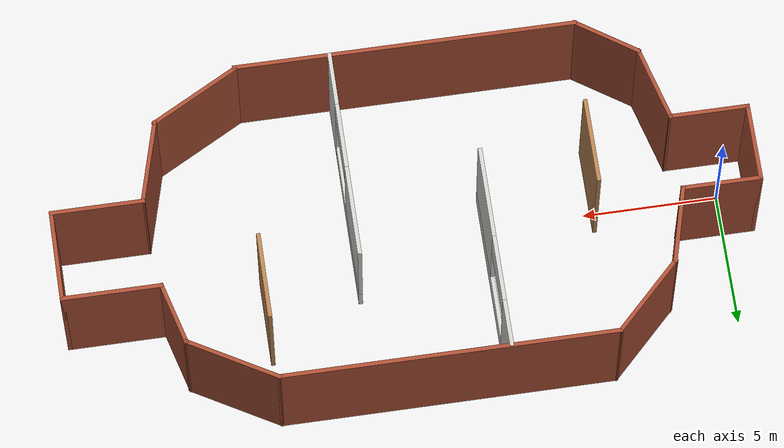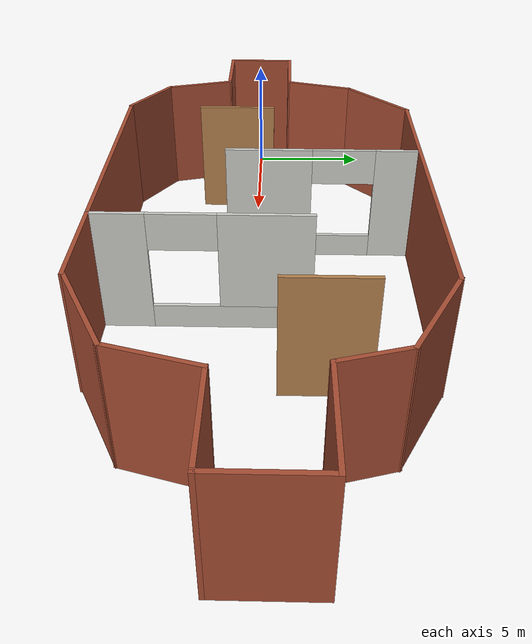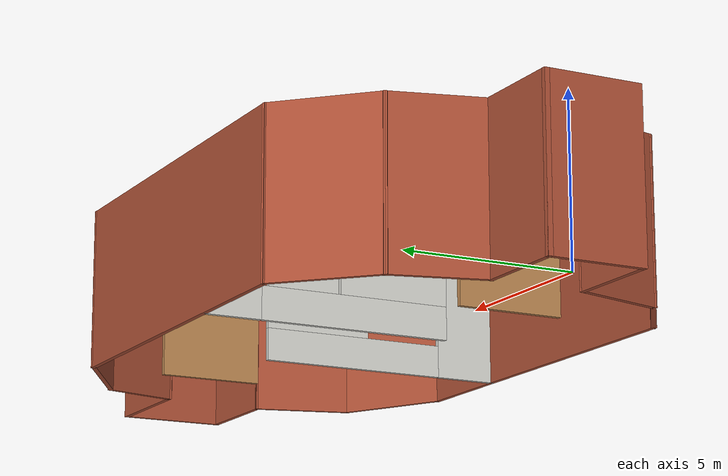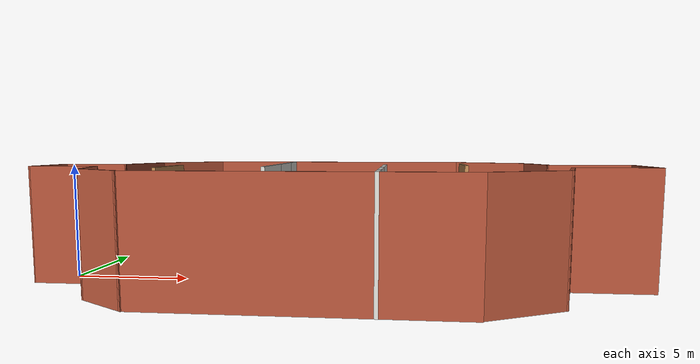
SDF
<?xml version='1.0'?>
<sdf version='1.5'>
  <model name='course_1'>
    <pose>11.674 0.448669 0 0 -0 0</pose>
    <link name='Wall_38'>
      <collision name='Wall_38_Collision'>
        <geometry>
          <box>
            <size>3 0.15 5</size>
          </box>
        </geometry>
        <pose>0 0 2.5 0 -0 0</pose>
      </collision>
      <visual name='Wall_38_Visual'>
        <pose>0 0 2.5 0 -0 0</pose>
        <geometry>
          <box>
            <size>3 0.15 5</size>
          </box>
        </geometry>
        <material>
          <script>
            <uri>file://media/materials/scripts/gazebo.material</uri>
            <name>Gazebo/Bricks</name>
          </script>
          <ambient>1 1 1 1</ambient>
        </material>
        <meta>
          <layer>0</layer>
        </meta>
      </visual>
      <pose>-12.816 -0.460669 0 0 -0 -1.5708</pose>
    </link>
    <link name='Wall_40'>
      <collision name='Wall_40_Collision'>
        <geometry>
          <box>
            <size>3 0.15 5</size>
          </box>
        </geometry>
        <pose>0 0 2.5 0 -0 0</pose>
      </collision>
      <visual name='Wall_40_Visual'>
        <pose>0 0 2.5 0 -0 0</pose>
        <geometry>
          <box>
            <size>3 0.15 5</size>
          </box>
        </geometry>
        <material>
          <script>
            <uri>file://media/materials/scripts/gazebo.material</uri>
            <name>Gazebo/Bricks</name>
          </script>
          <ambient>1 1 1 1</ambient>
        </material>
        <meta>
          <layer>0</layer>
        </meta>
      </visual>
      <pose>-11.391 0.964331 0 0 -0 0</pose>
    </link>
    <link name='Wall_42'>
      <collision name='Wall_42_Collision'>
        <geometry>
          <box>
            <size>3 0.15 5</size>
          </box>
        </geometry>
        <pose>0 0 2.5 0 -0 0</pose>
      </collision>
      <visual name='Wall_42_Visual'>
        <pose>0 0 2.5 0 -0 0</pose>
        <geometry>
          <box>
            <size>3 0.15 5</size>
          </box>
        </geometry>
        <material>
          <script>
            <uri>file://media/materials/scripts/gazebo.material</uri>
            <name>Gazebo/Bricks</name>
          </script>
          <ambient>1 1 1 1</ambient>
        </material>
        <meta>
          <layer>0</layer>
        </meta>
      </visual>
      <pose>-11.391 -1.88567 0 0 -0 0</pose>
    </link>
    <link name='Wall_44'>
      <collision name='Wall_44_Collision'>
        <geometry>
          <box>
            <size>3.00018 0.15 5</size>
          </box>
        </geometry>
        <pose>0 0 2.5 0 -0 0</pose>
      </collision>
      <visual name='Wall_44_Visual'>
        <pose>0 0 2.5 0 -0 0</pose>
        <geometry>
          <box>
            <size>3.00018 0.15 5</size>
          </box>
        </geometry>
        <material>
          <script>
            <uri>file://media/materials/scripts/gazebo.material</uri>
            <name>Gazebo/Bricks</name>
          </script>
          <ambient>1 1 1 1</ambient>
        </material>
        <meta>
          <layer>0</layer>
        </meta>
      </visual>
      <pose>-9.5974 2.34093 0 0 -0 1.30917</pose>
    </link>
    <link name='Wall_45'>
      <collision name='Wall_45_Collision'>
        <geometry>
          <box>
            <size>3.5 0.15 5</size>
          </box>
        </geometry>
        <pose>0 0 2.5 0 -0 0</pose>
      </collision>
      <visual name='Wall_45_Visual'>
        <pose>0 0 2.5 0 -0 0</pose>
        <geometry>
          <box>
            <size>3.5 0.15 5</size>
          </box>
        </geometry>
        <material>
          <script>
            <uri>file://media/materials/scripts/gazebo.material</uri>
            <name>Gazebo/Bricks</name>
          </script>
          <ambient>1 1 1 1</ambient>
        </material>
        <meta>
          <layer>0</layer>
        </meta>
      </visual>
      <pose>-8.0444 4.90193 0 0 -0 0.785398</pose>
    </link>
    <link name='Wall_46'>
      <collision name='Wall_46_Collision'>
        <geometry>
          <box>
            <size>12.5 0.15 5</size>
          </box>
        </geometry>
        <pose>0 0 2.5 0 -0 0</pose>
      </collision>
      <visual name='Wall_46_Visual'>
        <pose>0 0 2.5 0 -0 0</pose>
        <geometry>
          <box>
            <size>12.5 0.15 5</size>
          </box>
        </geometry>
        <material>
          <script>
            <uri>file://media/materials/scripts/gazebo.material</uri>
            <name>Gazebo/Bricks</name>
          </script>
          <ambient>1 1 1 1</ambient>
        </material>
        <meta>
          <layer>0</layer>
        </meta>
      </visual>
      <pose>-0.685 6.08633 0 0 -0 0</pose>
    </link>
    <link name='Wall_47'>
      <collision name='Wall_47_Collision'>
        <geometry>
          <box>
            <size>3.75027 0.15 5</size>
          </box>
        </geometry>
        <pose>0 0 2.5 0 -0 0</pose>
      </collision>
      <visual name='Wall_47_Visual'>
        <pose>0 0 2.5 0 -0 0</pose>
        <geometry>
          <box>
            <size>3.75027 0.15 5</size>
          </box>
        </geometry>
        <material>
          <script>
            <uri>file://media/materials/scripts/gazebo.material</uri>
            <name>Gazebo/Bricks</name>
          </script>
          <ambient>1 1 1 1</ambient>
        </material>
        <meta>
          <layer>0</layer>
        </meta>
      </visual>
      <pose>7.049 5.18633 0 0 -0 -0.523556</pose>
    </link>
    <link name='Wall_48'>
      <collision name='Wall_48_Collision'>
        <geometry>
          <box>
            <size>2.5 0.15 5</size>
          </box>
        </geometry>
        <pose>0 0 2.5 0 -0 0</pose>
      </collision>
      <visual name='Wall_48_Visual'>
        <pose>0 0 2.5 0 -0 0</pose>
        <geometry>
          <box>
            <size>2.5 0.15 5</size>
          </box>
        </geometry>
        <material>
          <script>
            <uri>file://media/materials/scripts/gazebo.material</uri>
            <name>Gazebo/Bricks</name>
          </script>
          <ambient>1 1 1 1</ambient>
        </material>
        <meta>
          <layer>0</layer>
        </meta>
      </visual>
      <pose>8.912 3.15133 0 0 -0 -1.3091</pose>
    </link>
    <link name='Wall_49'>
      <collision name='Wall_49_Collision'>
        <geometry>
          <box>
            <size>3.75 0.15 5</size>
          </box>
        </geometry>
        <pose>0 0 2.5 0 -0 0</pose>
      </collision>
      <visual name='Wall_49_Visual'>
        <pose>0 0 2.5 0 -0 0</pose>
        <geometry>
          <box>
            <size>3.75 0.15 5</size>
          </box>
        </geometry>
        <material>
          <script>
            <uri>file://media/materials/scripts/gazebo.material</uri>
            <name>Gazebo/Bricks</name>
          </script>
          <ambient>1 1 1 1</ambient>
        </material>
        <meta>
          <layer>0</layer>
        </meta>
      </visual>
      <pose>11.016 2.01633 0 0 -0 0</pose>
    </link>
    <link name='Wall_50'>
      <collision name='Wall_50_Collision'>
        <geometry>
          <box>
            <size>3.5 0.15 5</size>
          </box>
        </geometry>
        <pose>0 0 2.5 0 -0 0</pose>
      </collision>
      <visual name='Wall_50_Visual'>
        <pose>0 0 2.5 0 -0 0</pose>
        <geometry>
          <box>
            <size>3.5 0.15 5</size>
          </box>
        </geometry>
        <material>
          <script>
            <uri>file://media/materials/scripts/gazebo.material</uri>
            <name>Gazebo/Bricks</name>
          </script>
          <ambient>1 1 1 1</ambient>
        </material>
        <meta>
          <layer>0</layer>
        </meta>
      </visual>
      <pose>12.816 0.341331 0 0 -0 -1.5708</pose>
    </link>
    <link name='Wall_51'>
      <collision name='Wall_51_Collision'>
        <geometry>
          <box>
            <size>3.5 0.15 5</size>
          </box>
        </geometry>
        <pose>0 0 2.5 0 -0 0</pose>
      </collision>
      <visual name='Wall_51_Visual'>
        <pose>0 0 2.5 0 -0 0</pose>
        <geometry>
          <box>
            <size>3.5 0.15 5</size>
          </box>
        </geometry>
        <material>
          <script>
            <uri>file://media/materials/scripts/gazebo.material</uri>
            <name>Gazebo/Bricks</name>
          </script>
          <ambient>1 1 1 1</ambient>
        </material>
        <meta>
          <layer>0</layer>
        </meta>
      </visual>
      <pose>11.141 -1.33367 0 0 -0 3.14159</pose>
    </link>
    <link name='Wall_52'>
      <collision name='Wall_52_Collision'>
        <geometry>
          <box>
            <size>3.25 0.15 5</size>
          </box>
        </geometry>
        <pose>0 0 2.5 0 -0 0</pose>
      </collision>
      <visual name='Wall_52_Visual'>
        <pose>0 0 2.5 0 -0 0</pose>
        <geometry>
          <box>
            <size>3.25 0.15 5</size>
          </box>
        </geometry>
        <material>
          <script>
            <uri>file://media/materials/scripts/gazebo.material</uri>
            <name>Gazebo/Bricks</name>
          </script>
          <ambient>1 1 1 1</ambient>
        </material>
        <meta>
          <layer>0</layer>
        </meta>
      </visual>
      <pose>9.065 -2.83117 0 0 -0 -1.83244</pose>
    </link>
    <link name='Wall_53'>
      <collision name='Wall_53_Collision'>
        <geometry>
          <box>
            <size>3.74599 0.15 5</size>
          </box>
        </geometry>
        <pose>0 0 2.5 0 -0 0</pose>
      </collision>
      <visual name='Wall_53_Visual'>
        <pose>0 0 2.5 0 -0 0</pose>
        <geometry>
          <box>
            <size>3.74599 0.15 5</size>
          </box>
        </geometry>
        <material>
          <script>
            <uri>file://media/materials/scripts/gazebo.material</uri>
            <name>Gazebo/Bricks</name>
          </script>
          <ambient>1 1 1 1</ambient>
        </material>
        <meta>
          <layer>0</layer>
        </meta>
      </visual>
      <pose>7.08477 -5.18821 0 0 -0 -2.64315</pose>
    </link>
    <link name='Wall_54'>
      <collision name='Wall_54_Collision'>
        <geometry>
          <box>
            <size>12.75 0.15 5</size>
          </box>
        </geometry>
        <pose>0 0 2.5 0 -0 0</pose>
      </collision>
      <visual name='Wall_54_Visual'>
        <pose>0 0 2.5 0 -0 0</pose>
        <geometry>
          <box>
            <size>12.75 0.15 5</size>
          </box>
        </geometry>
        <material>
          <script>
            <uri>file://media/materials/scripts/gazebo.material</uri>
            <name>Gazebo/Bricks</name>
          </script>
          <ambient>1 1 1 1</ambient>
        </material>
        <meta>
          <layer>0</layer>
        </meta>
      </visual>
      <pose>-0.794456 -6.08821 0 0 -0 3.14159</pose>
    </link>
    <link name='Wall_55'>
      <collision name='Wall_55_Collision'>
        <geometry>
          <box>
            <size>2.72974 0.15 5</size>
          </box>
        </geometry>
        <pose>0 0 2.5 0 -0 0</pose>
      </collision>
      <visual name='Wall_55_Visual'>
        <pose>0 0 2.5 0 -0 0</pose>
        <geometry>
          <box>
            <size>2.72974 0.15 5</size>
          </box>
        </geometry>
        <material>
          <script>
            <uri>file://media/materials/scripts/gazebo.material</uri>
            <name>Gazebo/Bricks</name>
          </script>
          <ambient>1 1 1 1</ambient>
        </material>
        <meta>
          <layer>0</layer>
        </meta>
      </visual>
      <pose>-8.16141 -5.36339 0 0 -0 2.54487</pose>
    </link>
    <link name='Wall_56'>
      <collision name='Wall_56_Collision'>
        <geometry>
          <box>
            <size>3 0.15 5</size>
          </box>
        </geometry>
        <pose>0 0 2.5 0 -0 0</pose>
      </collision>
      <visual name='Wall_56_Visual'>
        <pose>0 0 2.5 0 -0 0</pose>
        <geometry>
          <box>
            <size>3 0.15 5</size>
          </box>
        </geometry>
        <material>
          <script>
            <uri>file://media/materials/scripts/gazebo.material</uri>
            <name>Gazebo/Bricks</name>
          </script>
          <ambient>1 1 1 1</ambient>
        </material>
        <meta>
          <layer>0</layer>
        </meta>
      </visual>
      <pose>-9.59718 -3.26211 0 0 -0 1.8326</pose>
    </link>
    <link name='Wall_58'>
      <pose>-2.907 2.24533 0 0 -0 -1.5708</pose>
      <visual name='Wall_58_Visual_0'>
        <pose>-2.98587 0 2.5 0 -0 0</pose>
        <geometry>
          <box>
            <size>1.77826 0.15 5</size>
          </box>
        </geometry>
        <material>
          <script>
            <uri>file://media/materials/scripts/gazebo.material</uri>
            <name>Gazebo/CeilingTiled</name>
          </script>
          <ambient>1 1 1 1</ambient>
        </material>
        <meta>
          <layer>0</layer>
        </meta>
      </visual>
      <collision name='Wall_58_Collision_0'>
        <geometry>
          <box>
            <size>1.77826 0.15 5</size>
          </box>
        </geometry>
        <pose>-2.98587 0 2.5 0 -0 0</pose>
      </collision>
      <visual name='Wall_58_Visual_1'>
        <pose>0.889129 0 0.5 0 -0 0</pose>
        <geometry>
          <box>
            <size>5.97174 0.15 1</size>
          </box>
        </geometry>
        <material>
          <script>
            <uri>file://media/materials/scripts/gazebo.material</uri>
            <name>Gazebo/CeilingTiled</name>
          </script>
          <ambient>1 1 1 1</ambient>
        </material>
        <meta>
          <layer>0</layer>
        </meta>
      </visual>
      <collision name='Wall_58_Collision_1'>
        <geometry>
          <box>
            <size>5.97174 0.15 1</size>
          </box>
        </geometry>
        <pose>0.889129 0 0.5 0 -0 0</pose>
      </collision>
      <visual name='Wall_58_Visual_2'>
        <pose>2.13913 0 3 0 -0 0</pose>
        <geometry>
          <box>
            <size>3.47174 0.15 4</size>
          </box>
        </geometry>
        <material>
          <script>
            <uri>file://media/materials/scripts/gazebo.material</uri>
            <name>Gazebo/CeilingTiled</name>
          </script>
          <ambient>1 1 1 1</ambient>
        </material>
        <meta>
          <layer>0</layer>
        </meta>
      </visual>
      <collision name='Wall_58_Collision_2'>
        <geometry>
          <box>
            <size>3.47174 0.15 4</size>
          </box>
        </geometry>
        <pose>2.13913 0 3 0 -0 0</pose>
      </collision>
      <visual name='Wall_58_Visual_3'>
        <pose>-0.846742 0 4.25 0 -0 0</pose>
        <geometry>
          <box>
            <size>2.5 0.15 1.5</size>
          </box>
        </geometry>
        <material>
          <script>
            <uri>file://media/materials/scripts/gazebo.material</uri>
            <name>Gazebo/CeilingTiled</name>
          </script>
          <ambient>1 1 1 1</ambient>
        </material>
        <meta>
          <layer>0</layer>
        </meta>
      </visual>
      <collision name='Wall_58_Collision_3'>
        <geometry>
          <box>
            <size>2.5 0.15 1.5</size>
          </box>
        </geometry>
        <pose>-0.846742 0 4.25 0 -0 0</pose>
      </collision>
    </link>
    <link name='Wall_60'>
      <pose>1.988 -2.16667 0 0 -0 1.5708</pose>
      <visual name='Wall_60_Visual_0'>
        <pose>-2.96911 0 2.5 0 -0 0</pose>
        <geometry>
          <box>
            <size>2.06177 0.15 5</size>
          </box>
        </geometry>
        <material>
          <script>
            <uri>file://media/materials/scripts/gazebo.material</uri>
            <name>Gazebo/CeilingTiled</name>
          </script>
          <ambient>1 1 1 1</ambient>
        </material>
        <meta>
          <layer>0</layer>
        </meta>
      </visual>
      <collision name='Wall_60_Collision_0'>
        <geometry>
          <box>
            <size>2.06177 0.15 5</size>
          </box>
        </geometry>
        <pose>-2.96911 0 2.5 0 -0 0</pose>
      </collision>
      <visual name='Wall_60_Visual_1'>
        <pose>1.03089 0 0.5 0 -0 0</pose>
        <geometry>
          <box>
            <size>5.93823 0.15 1</size>
          </box>
        </geometry>
        <material>
          <script>
            <uri>file://media/materials/scripts/gazebo.material</uri>
            <name>Gazebo/CeilingTiled</name>
          </script>
          <ambient>1 1 1 1</ambient>
        </material>
        <meta>
          <layer>0</layer>
        </meta>
      </visual>
      <collision name='Wall_60_Collision_1'>
        <geometry>
          <box>
            <size>5.93823 0.15 1</size>
          </box>
        </geometry>
        <pose>1.03089 0 0.5 0 -0 0</pose>
      </collision>
      <visual name='Wall_60_Visual_2'>
        <pose>2.28089 0 3 0 -0 0</pose>
        <geometry>
          <box>
            <size>3.43823 0.15 4</size>
          </box>
        </geometry>
        <material>
          <script>
            <uri>file://media/materials/scripts/gazebo.material</uri>
            <name>Gazebo/CeilingTiled</name>
          </script>
          <ambient>1 1 1 1</ambient>
        </material>
        <meta>
          <layer>0</layer>
        </meta>
      </visual>
      <collision name='Wall_60_Collision_2'>
        <geometry>
          <box>
            <size>3.43823 0.15 4</size>
          </box>
        </geometry>
        <pose>2.28089 0 3 0 -0 0</pose>
      </collision>
      <visual name='Wall_60_Visual_3'>
        <pose>-0.688227 0 4.25 0 -0 0</pose>
        <geometry>
          <box>
            <size>2.5 0.15 1.5</size>
          </box>
        </geometry>
        <material>
          <script>
            <uri>file://media/materials/scripts/gazebo.material</uri>
            <name>Gazebo/CeilingTiled</name>
          </script>
          <ambient>1 1 1 1</ambient>
        </material>
        <meta>
          <layer>0</layer>
        </meta>
      </visual>
      <collision name='Wall_60_Collision_3'>
        <geometry>
          <box>
            <size>2.5 0.15 1.5</size>
          </box>
        </geometry>
        <pose>-0.688227 0 4.25 0 -0 0</pose>
      </collision>
    </link>
    <link name='Wall_62'>
      <collision name='Wall_62_Collision'>
        <geometry>
          <box>
            <size>3.25 0.15 5</size>
          </box>
        </geometry>
        <pose>0 0 2.5 0 -0 0</pose>
      </collision>
      <visual name='Wall_62_Visual'>
        <pose>0 0 2.5 0 -0 0</pose>
        <geometry>
          <box>
            <size>3.25 0.15 5</size>
          </box>
        </geometry>
        <material>
          <script>
            <uri>file://media/materials/scripts/gazebo.material</uri>
            <name>Gazebo/Wood</name>
          </script>
          <ambient>1 1 1 1</ambient>
        </material>
        <meta>
          <layer>0</layer>
        </meta>
      </visual>
      <pose>-6.993 -1.37067 0 0 -0 -1.5708</pose>
    </link>
    <link name='Wall_64'>
      <collision name='Wall_64_Collision'>
        <geometry>
          <box>
            <size>3.25 0.15 5</size>
          </box>
        </geometry>
        <pose>0 0 2.5 0 -0 0</pose>
      </collision>
      <visual name='Wall_64_Visual'>
        <pose>0 0 2.5 0 -0 0</pose>
        <geometry>
          <box>
            <size>3.25 0.15 5</size>
          </box>
        </geometry>
        <material>
          <script>
            <uri>file://media/materials/scripts/gazebo.material</uri>
            <name>Gazebo/Wood</name>
          </script>
          <ambient>1 1 1 1</ambient>
        </material>
        <meta>
          <layer>0</layer>
        </meta>
      </visual>
      <pose>5.508 2.14933 0 0 -0 -1.5708</pose>
    </link>
    <static>1</static>
  </model>
</sdf>
